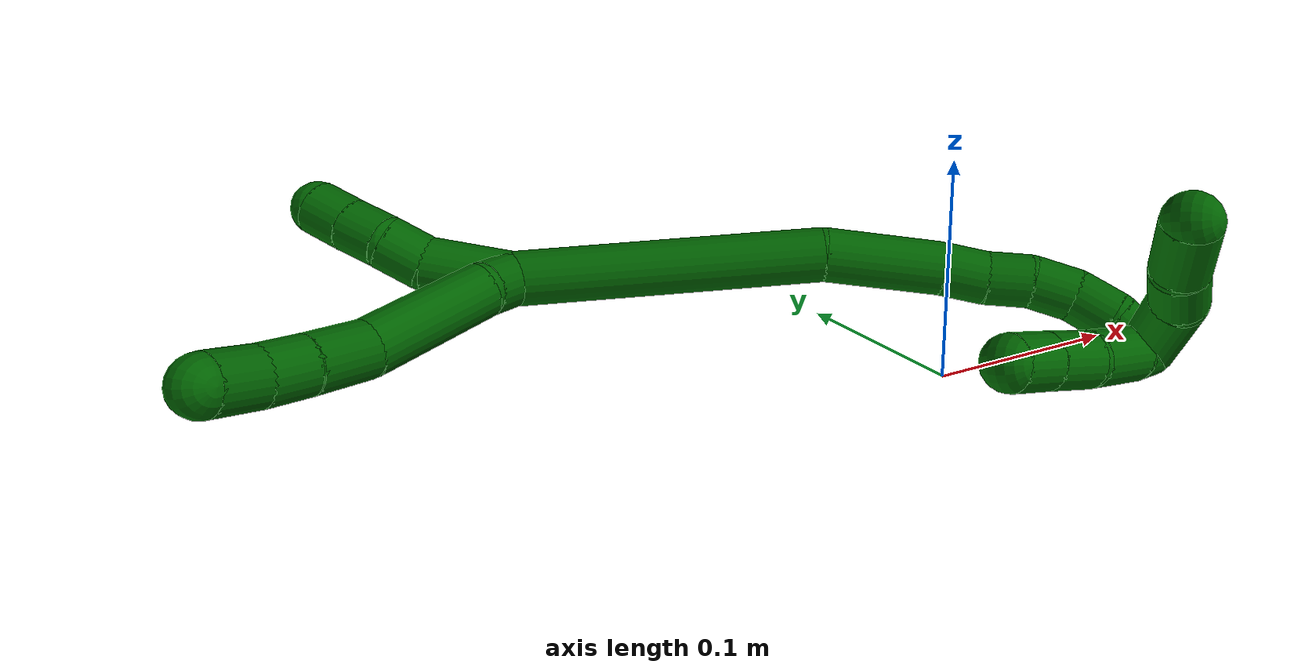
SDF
<sdf version="1.7">
 <world name="default">
  <model name="6">
   <static>0</static>
   <link name="6">
    <collision name="collision-cylinder-e_1_2_8">
     <pose>-0.009764 0.000993 0.001961 -0.468888 -1.34938 0.377549</pose>
     <geometry><cylinder><radius>0.0125</radius><length>0.020016</length></cylinder></geometry>
     <surface>
      <friction><ode><mu>1.16</mu><mu2>1.16</mu2><slip1>0</slip1><slip2>0</slip2></ode></friction>
      <contact><ode><kp>1e+06</kp><kd>1</kd><max_vel>0</max_vel><min_depth>0.001</min_depth></ode></contact>
     </surface>
    </collision>
    <visual name="visual-cylinder-e_1_2_8">
     <pose>-0.009764 0.000993 0.001961 -0.468888 -1.34938 0.377549</pose>
     <geometry><cylinder><radius>0.0125</radius><length>0.020016</length></cylinder></geometry>
     <material><ambient>0 0.392157 0.003922 1</ambient></material>
    </visual>
    <collision name="collision-cylinder-e_2_8_9">
     <pose>-0.049166 0.000321 0.00273 2.19174 -1.5018 -2.13447</pose>
     <geometry><cylinder><radius>0.0125</radius><length>0.059417</length></cylinder></geometry>
     <surface>
      <friction><ode><mu>1.16</mu><mu2>1.16</mu2><slip1>0</slip1><slip2>0</slip2></ode></friction>
      <contact><ode><kp>1e+06</kp><kd>1</kd><max_vel>0</max_vel><min_depth>0.001</min_depth></ode></contact>
     </surface>
    </collision>
    <visual name="visual-cylinder-e_2_8_9">
     <pose>-0.049166 0.000321 0.00273 2.19174 -1.5018 -2.13447</pose>
     <geometry><cylinder><radius>0.0125</radius><length>0.059417</length></cylinder></geometry>
     <material><ambient>0 0.392157 0.003922 1</ambient></material>
    </visual>
    <collision name="collision-cylinder-e_3_9_10">
     <pose>-0.092702 0.001089 0.003369 -0.926044 -1.35507 0.763883</pose>
     <geometry><cylinder><radius>0.0125</radius><length>0.028456</length></cylinder></geometry>
     <surface>
      <friction><ode><mu>1.16</mu><mu2>1.16</mu2><slip1>0</slip1><slip2>0</slip2></ode></friction>
      <contact><ode><kp>1e+06</kp><kd>1</kd><max_vel>0</max_vel><min_depth>0.001</min_depth></ode></contact>
     </surface>
    </collision>
    <visual name="visual-cylinder-e_3_9_10">
     <pose>-0.092702 0.001089 0.003369 -0.926044 -1.35507 0.763883</pose>
     <geometry><cylinder><radius>0.0125</radius><length>0.028456</length></cylinder></geometry>
     <material><ambient>0 0.392157 0.003922 1</ambient></material>
    </visual>
    <collision name="collision-cylinder-e_4_10_11">
     <pose>-0.116477 0.00543 0.005911 -1.21333 -1.36761 1.02944</pose>
     <geometry><cylinder><radius>0.0125</radius><length>0.02017</length></cylinder></geometry>
     <surface>
      <friction><ode><mu>1.16</mu><mu2>1.16</mu2><slip1>0</slip1><slip2>0</slip2></ode></friction>
      <contact><ode><kp>1e+06</kp><kd>1</kd><max_vel>0</max_vel><min_depth>0.001</min_depth></ode></contact>
     </surface>
    </collision>
    <visual name="visual-cylinder-e_4_10_11">
     <pose>-0.116477 0.00543 0.005911 -1.21333 -1.36761 1.02944</pose>
     <geometry><cylinder><radius>0.0125</radius><length>0.02017</length></cylinder></geometry>
     <material><ambient>0 0.392157 0.003922 1</ambient></material>
    </visual>
    <collision name="collision-cylinder-e_5_11_6">
     <pose>-0.136721 0.010292 0.008663 -0.966875 -1.23728 0.715293</pose>
     <geometry><cylinder><radius>0.0125</radius><length>0.02194</length></cylinder></geometry>
     <surface>
      <friction><ode><mu>1.16</mu><mu2>1.16</mu2><slip1>0</slip1><slip2>0</slip2></ode></friction>
      <contact><ode><kp>1e+06</kp><kd>1</kd><max_vel>0</max_vel><min_depth>0.001</min_depth></ode></contact>
     </surface>
    </collision>
    <visual name="visual-cylinder-e_5_11_6">
     <pose>-0.136721 0.010292 0.008663 -0.966875 -1.23728 0.715293</pose>
     <geometry><cylinder><radius>0.0125</radius><length>0.02194</length></cylinder></geometry>
     <material><ambient>0 0.392157 0.003922 1</ambient></material>
    </visual>
    <collision name="collision-cylinder-e_1_2_12">
     <pose>-0.010671 0.007731 -0.014763 -2.65916 -0.569548 1.74382</pose>
     <geometry><cylinder><radius>0.0125</radius><length>0.039577</length></cylinder></geometry>
     <surface>
      <friction><ode><mu>1.16</mu><mu2>1.16</mu2><slip1>0</slip1><slip2>0</slip2></ode></friction>
      <contact><ode><kp>1e+06</kp><kd>1</kd><max_vel>0</max_vel><min_depth>0.001</min_depth></ode></contact>
     </surface>
    </collision>
    <visual name="visual-cylinder-e_1_2_12">
     <pose>-0.010671 0.007731 -0.014763 -2.65916 -0.569548 1.74382</pose>
     <geometry><cylinder><radius>0.0125</radius><length>0.039577</length></cylinder></geometry>
     <material><ambient>0 0.392157 0.003922 1</ambient></material>
    </visual>
    <collision name="collision-cylinder-e_2_12_13">
     <pose>-0.025466 0.022182 -0.035975 -2.33571 -0.416904 0.921253</pose>
     <geometry><cylinder><radius>0.0125</radius><length>0.020372</length></cylinder></geometry>
     <surface>
      <friction><ode><mu>1.16</mu><mu2>1.16</mu2><slip1>0</slip1><slip2>0</slip2></ode></friction>
      <contact><ode><kp>1e+06</kp><kd>1</kd><max_vel>0</max_vel><min_depth>0.001</min_depth></ode></contact>
     </surface>
    </collision>
    <visual name="visual-cylinder-e_2_12_13">
     <pose>-0.025466 0.022182 -0.035975 -2.33571 -0.416904 0.921253</pose>
     <geometry><cylinder><radius>0.0125</radius><length>0.020372</length></cylinder></geometry>
     <material><ambient>0 0.392157 0.003922 1</ambient></material>
    </visual>
    <collision name="collision-cylinder-e_3_13_14">
     <pose>-0.031556 0.033935 -0.050866 -2.60384 -0.197312 0.68969</pose>
     <geometry><cylinder><radius>0.0125</radius><length>0.020047</length></cylinder></geometry>
     <surface>
      <friction><ode><mu>1.16</mu><mu2>1.16</mu2><slip1>0</slip1><slip2>0</slip2></ode></friction>
      <contact><ode><kp>1e+06</kp><kd>1</kd><max_vel>0</max_vel><min_depth>0.001</min_depth></ode></contact>
     </surface>
    </collision>
    <visual name="visual-cylinder-e_3_13_14">
     <pose>-0.031556 0.033935 -0.050866 -2.60384 -0.197312 0.68969</pose>
     <geometry><cylinder><radius>0.0125</radius><length>0.020047</length></cylinder></geometry>
     <material><ambient>0 0.392157 0.003922 1</ambient></material>
    </visual>
    <collision name="collision-cylinder-e_4_14_5">
     <pose>-0.035269 0.044191 -0.067658 -2.58281 -0.175706 0.59575</pose>
     <geometry><cylinder><radius>0.0125</radius><length>0.020005</length></cylinder></geometry>
     <surface>
      <friction><ode><mu>1.16</mu><mu2>1.16</mu2><slip1>0</slip1><slip2>0</slip2></ode></friction>
      <contact><ode><kp>1e+06</kp><kd>1</kd><max_vel>0</max_vel><min_depth>0.001</min_depth></ode></contact>
     </surface>
    </collision>
    <visual name="visual-cylinder-e_4_14_5">
     <pose>-0.035269 0.044191 -0.067658 -2.58281 -0.175706 0.59575</pose>
     <geometry><cylinder><radius>0.0125</radius><length>0.020005</length></cylinder></geometry>
     <material><ambient>0 0.392157 0.003922 1</ambient></material>
    </visual>
    <collision name="collision-cylinder-e_1_2_15">
     <pose>0.048103 -0.012289 0.050147 0.240321 0.750043 0.094989</pose>
     <geometry><cylinder><radius>0.0125</radius><length>0.141134</length></cylinder></geometry>
     <surface>
      <friction><ode><mu>1.16</mu><mu2>1.16</mu2><slip1>0</slip1><slip2>0</slip2></ode></friction>
      <contact><ode><kp>1e+06</kp><kd>1</kd><max_vel>0</max_vel><min_depth>0.001</min_depth></ode></contact>
     </surface>
    </collision>
    <visual name="visual-cylinder-e_1_2_15">
     <pose>0.048103 -0.012289 0.050147 0.240321 0.750043 0.094989</pose>
     <geometry><cylinder><radius>0.0125</radius><length>0.141134</length></cylinder></geometry>
     <material><ambient>0 0.392157 0.003922 1</ambient></material>
    </visual>
    <collision name="collision-cylinder-e_2_15_16">
     <pose>0.114197 -0.034766 0.11869 0.505764 0.707692 0.190336</pose>
     <geometry><cylinder><radius>0.0125</radius><length>0.055349</length></cylinder></geometry>
     <surface>
      <friction><ode><mu>1.16</mu><mu2>1.16</mu2><slip1>0</slip1><slip2>0</slip2></ode></friction>
      <contact><ode><kp>1e+06</kp><kd>1</kd><max_vel>0</max_vel><min_depth>0.001</min_depth></ode></contact>
     </surface>
    </collision>
    <visual name="visual-cylinder-e_2_15_16">
     <pose>0.114197 -0.034766 0.11869 0.505764 0.707692 0.190336</pose>
     <geometry><cylinder><radius>0.0125</radius><length>0.055349</length></cylinder></geometry>
     <material><ambient>0 0.392157 0.003922 1</ambient></material>
    </visual>
    <collision name="collision-cylinder-e_3_16_17">
     <pose>0.138165 -0.049579 0.144431 0.562067 0.603075 0.179087</pose>
     <geometry><cylinder><radius>0.0125</radius><length>0.021078</length></cylinder></geometry>
     <surface>
      <friction><ode><mu>1.16</mu><mu2>1.16</mu2><slip1>0</slip1><slip2>0</slip2></ode></friction>
      <contact><ode><kp>1e+06</kp><kd>1</kd><max_vel>0</max_vel><min_depth>0.001</min_depth></ode></contact>
     </surface>
    </collision>
    <visual name="visual-cylinder-e_3_16_17">
     <pose>0.138165 -0.049579 0.144431 0.562067 0.603075 0.179087</pose>
     <geometry><cylinder><radius>0.0125</radius><length>0.021078</length></cylinder></geometry>
     <material><ambient>0 0.392157 0.003922 1</ambient></material>
    </visual>
    <collision name="collision-cylinder-e_4_17_18">
     <pose>0.150055 -0.057335 0.159876 0.368678 0.59774 0.114767</pose>
     <geometry><cylinder><radius>0.0125</radius><length>0.021012</length></cylinder></geometry>
     <surface>
      <friction><ode><mu>1.16</mu><mu2>1.16</mu2><slip1>0</slip1><slip2>0</slip2></ode></friction>
      <contact><ode><kp>1e+06</kp><kd>1</kd><max_vel>0</max_vel><min_depth>0.001</min_depth></ode></contact>
     </surface>
    </collision>
    <visual name="visual-cylinder-e_4_17_18">
     <pose>0.150055 -0.057335 0.159876 0.368678 0.59774 0.114767</pose>
     <geometry><cylinder><radius>0.0125</radius><length>0.021012</length></cylinder></geometry>
     <material><ambient>0 0.392157 0.003922 1</ambient></material>
    </visual>
    <collision name="collision-cylinder-e_5_18_19">
     <pose>0.160841 -0.065756 0.17567 0.602511 0.481037 0.15212</pose>
     <geometry><cylinder><radius>0.0125</radius><length>0.021066</length></cylinder></geometry>
     <surface>
      <friction><ode><mu>1.16</mu><mu2>1.16</mu2><slip1>0</slip1><slip2>0</slip2></ode></friction>
      <contact><ode><kp>1e+06</kp><kd>1</kd><max_vel>0</max_vel><min_depth>0.001</min_depth></ode></contact>
     </surface>
    </collision>
    <visual name="visual-cylinder-e_5_18_19">
     <pose>0.160841 -0.065756 0.17567 0.602511 0.481037 0.15212</pose>
     <geometry><cylinder><radius>0.0125</radius><length>0.021066</length></cylinder></geometry>
     <material><ambient>0 0.392157 0.003922 1</ambient></material>
    </visual>
    <collision name="collision-cylinder-e_6_19_20">
     <pose>0.167157 -0.07721 0.191301 0.660137 0.142568 0.048917</pose>
     <geometry><cylinder><radius>0.0125</radius><length>0.020304</length></cylinder></geometry>
     <surface>
      <friction><ode><mu>1.16</mu><mu2>1.16</mu2><slip1>0</slip1><slip2>0</slip2></ode></friction>
      <contact><ode><kp>1e+06</kp><kd>1</kd><max_vel>0</max_vel><min_depth>0.001</min_depth></ode></contact>
     </surface>
    </collision>
    <visual name="visual-cylinder-e_6_19_20">
     <pose>0.167157 -0.07721 0.191301 0.660137 0.142568 0.048917</pose>
     <geometry><cylinder><radius>0.0125</radius><length>0.020304</length></cylinder></geometry>
     <material><ambient>0 0.392157 0.003922 1</ambient></material>
    </visual>
    <collision name="collision-cylinder-e_7_20_1">
     <pose>0.169994 -0.091291 0.205234 0.922771 0.139519 0.06945</pose>
     <geometry><cylinder><radius>0.0125</radius><length>0.020058</length></cylinder></geometry>
     <surface>
      <friction><ode><mu>1.16</mu><mu2>1.16</mu2><slip1>0</slip1><slip2>0</slip2></ode></friction>
      <contact><ode><kp>1e+06</kp><kd>1</kd><max_vel>0</max_vel><min_depth>0.001</min_depth></ode></contact>
     </surface>
    </collision>
    <visual name="visual-cylinder-e_7_20_1">
     <pose>0.169994 -0.091291 0.205234 0.922771 0.139519 0.06945</pose>
     <geometry><cylinder><radius>0.0125</radius><length>0.020058</length></cylinder></geometry>
     <material><ambient>0 0.392157 0.003922 1</ambient></material>
    </visual>
    <collision name="collision-cylinder-e_1_1_21">
     <pose>0.161338 -0.096343 0.211601 -1.44152 -1.29082 1.16874</pose>
     <geometry><cylinder><radius>0.0125</radius><length>0.020916</length></cylinder></geometry>
     <surface>
      <friction><ode><mu>1.16</mu><mu2>1.16</mu2><slip1>0</slip1><slip2>0</slip2></ode></friction>
      <contact><ode><kp>1e+06</kp><kd>1</kd><max_vel>0</max_vel><min_depth>0.001</min_depth></ode></contact>
     </surface>
    </collision>
    <visual name="visual-cylinder-e_1_1_21">
     <pose>0.161338 -0.096343 0.211601 -1.44152 -1.29082 1.16874</pose>
     <geometry><cylinder><radius>0.0125</radius><length>0.020916</length></cylinder></geometry>
     <material><ambient>0 0.392157 0.003922 1</ambient></material>
    </visual>
    <collision name="collision-cylinder-e_2_21_22">
     <pose>0.134545 -0.087848 0.210198 -1.87641 -1.23182 1.53563</pose>
     <geometry><cylinder><radius>0.0125</radius><length>0.035505</length></cylinder></geometry>
     <surface>
      <friction><ode><mu>1.16</mu><mu2>1.16</mu2><slip1>0</slip1><slip2>0</slip2></ode></friction>
      <contact><ode><kp>1e+06</kp><kd>1</kd><max_vel>0</max_vel><min_depth>0.001</min_depth></ode></contact>
     </surface>
    </collision>
    <visual name="visual-cylinder-e_2_21_22">
     <pose>0.134545 -0.087848 0.210198 -1.87641 -1.23182 1.53563</pose>
     <geometry><cylinder><radius>0.0125</radius><length>0.035505</length></cylinder></geometry>
     <material><ambient>0 0.392157 0.003922 1</ambient></material>
    </visual>
    <collision name="collision-cylinder-e_3_22_23">
     <pose>0.107478 -0.078358 0.20458 -2.35382 -1.08542 1.93486</pose>
     <geometry><cylinder><radius>0.0125</radius><length>0.023346</length></cylinder></geometry>
     <surface>
      <friction><ode><mu>1.16</mu><mu2>1.16</mu2><slip1>0</slip1><slip2>0</slip2></ode></friction>
      <contact><ode><kp>1e+06</kp><kd>1</kd><max_vel>0</max_vel><min_depth>0.001</min_depth></ode></contact>
     </surface>
    </collision>
    <visual name="visual-cylinder-e_3_22_23">
     <pose>0.107478 -0.078358 0.20458 -2.35382 -1.08542 1.93486</pose>
     <geometry><cylinder><radius>0.0125</radius><length>0.023346</length></cylinder></geometry>
     <material><ambient>0 0.392157 0.003922 1</ambient></material>
    </visual>
    <collision name="collision-cylinder-e_4_23_4">
     <pose>0.088063 -0.071229 0.197732 -2.31437 -1.1163 1.91613</pose>
     <geometry><cylinder><radius>0.0125</radius><length>0.020232</length></cylinder></geometry>
     <surface>
      <friction><ode><mu>1.16</mu><mu2>1.16</mu2><slip1>0</slip1><slip2>0</slip2></ode></friction>
      <contact><ode><kp>1e+06</kp><kd>1</kd><max_vel>0</max_vel><min_depth>0.001</min_depth></ode></contact>
     </surface>
    </collision>
    <visual name="visual-cylinder-e_4_23_4">
     <pose>0.088063 -0.071229 0.197732 -2.31437 -1.1163 1.91613</pose>
     <geometry><cylinder><radius>0.0125</radius><length>0.020232</length></cylinder></geometry>
     <material><ambient>0 0.392157 0.003922 1</ambient></material>
    </visual>
    <collision name="collision-cylinder-e_1_1_24">
     <pose>0.157945 -0.082556 0.225816 -0.851424 -0.545757 0.25245</pose>
     <geometry><cylinder><radius>0.0125</radius><length>0.051802</length></cylinder></geometry>
     <surface>
      <friction><ode><mu>1.16</mu><mu2>1.16</mu2><slip1>0</slip1><slip2>0</slip2></ode></friction>
      <contact><ode><kp>1e+06</kp><kd>1</kd><max_vel>0</max_vel><min_depth>0.001</min_depth></ode></contact>
     </surface>
    </collision>
    <visual name="visual-cylinder-e_1_1_24">
     <pose>0.157945 -0.082556 0.225816 -0.851424 -0.545757 0.25245</pose>
     <geometry><cylinder><radius>0.0125</radius><length>0.051802</length></cylinder></geometry>
     <material><ambient>0 0.392157 0.003922 1</ambient></material>
    </visual>
    <collision name="collision-cylinder-e_2_24_25">
     <pose>0.139007 -0.057456 0.24365 -1.2039 -0.545614 0.379791</pose>
     <geometry><cylinder><radius>0.0125</radius><length>0.021171</length></cylinder></geometry>
     <surface>
      <friction><ode><mu>1.16</mu><mu2>1.16</mu2><slip1>0</slip1><slip2>0</slip2></ode></friction>
      <contact><ode><kp>1e+06</kp><kd>1</kd><max_vel>0</max_vel><min_depth>0.001</min_depth></ode></contact>
     </surface>
    </collision>
    <visual name="visual-cylinder-e_2_24_25">
     <pose>0.139007 -0.057456 0.24365 -1.2039 -0.545614 0.379791</pose>
     <geometry><cylinder><radius>0.0125</radius><length>0.021171</length></cylinder></geometry>
     <material><ambient>0 0.392157 0.003922 1</ambient></material>
    </visual>
    <collision name="collision-cylinder-e_3_25_3">
     <pose>0.128976 -0.037624 0.252584 -1.10746 -0.34248 0.213023</pose>
     <geometry><cylinder><radius>0.0125</radius><length>0.027027</length></cylinder></geometry>
     <surface>
      <friction><ode><mu>1.16</mu><mu2>1.16</mu2><slip1>0</slip1><slip2>0</slip2></ode></friction>
      <contact><ode><kp>1e+06</kp><kd>1</kd><max_vel>0</max_vel><min_depth>0.001</min_depth></ode></contact>
     </surface>
    </collision>
    <visual name="visual-cylinder-e_3_25_3">
     <pose>0.128976 -0.037624 0.252584 -1.10746 -0.34248 0.213023</pose>
     <geometry><cylinder><radius>0.0125</radius><length>0.027027</length></cylinder></geometry>
     <material><ambient>0 0.392157 0.003922 1</ambient></material>
    </visual>
    <collision name="collision-sphere-3">
     <pose>0.124438 -0.026237 0.258273 0 -0 0</pose>
     <geometry><sphere><radius>0.0125</radius></sphere></geometry>
     <surface>
      <friction><ode><mu>1.16</mu><mu2>1.16</mu2><slip1>0</slip1><slip2>0</slip2></ode></friction>
      <contact><ode><kp>1e+06</kp><kd>1</kd><max_vel>0</max_vel><min_depth>0.001</min_depth></ode></contact>
     </surface>
    </collision>
    <visual name="visual-sphere-3">
     <pose>0.124438 -0.026237 0.258273 0 -0 0</pose>
     <geometry><sphere><radius>0.0125</radius></sphere></geometry>
     <material><ambient>0 0.392157 0.003922 1</ambient></material>
    </visual>
    <collision name="collision-sphere-25">
     <pose>0.133514 -0.04901 0.246896 0 -0 0</pose>
     <geometry><sphere><radius>0.0125</radius></sphere></geometry>
     <surface>
      <friction><ode><mu>1.16</mu><mu2>1.16</mu2><slip1>0</slip1><slip2>0</slip2></ode></friction>
      <contact><ode><kp>1e+06</kp><kd>1</kd><max_vel>0</max_vel><min_depth>0.001</min_depth></ode></contact>
     </surface>
    </collision>
    <visual name="visual-sphere-25">
     <pose>0.133514 -0.04901 0.246896 0 -0 0</pose>
     <geometry><sphere><radius>0.0125</radius></sphere></geometry>
     <material><ambient>0 0.392157 0.003922 1</ambient></material>
    </visual>
    <collision name="collision-sphere-24">
     <pose>0.1445 -0.065903 0.240404 0 -0 0</pose>
     <geometry><sphere><radius>0.0125</radius></sphere></geometry>
     <surface>
      <friction><ode><mu>1.16</mu><mu2>1.16</mu2><slip1>0</slip1><slip2>0</slip2></ode></friction>
      <contact><ode><kp>1e+06</kp><kd>1</kd><max_vel>0</max_vel><min_depth>0.001</min_depth></ode></contact>
     </surface>
    </collision>
    <visual name="visual-sphere-24">
     <pose>0.1445 -0.065903 0.240404 0 -0 0</pose>
     <geometry><sphere><radius>0.0125</radius></sphere></geometry>
     <material><ambient>0 0.392157 0.003922 1</ambient></material>
    </visual>
    <collision name="collision-sphere-4">
     <pose>0.078974 -0.067961 0.194726 0 -0 0</pose>
     <geometry><sphere><radius>0.0125</radius></sphere></geometry>
     <surface>
      <friction><ode><mu>1.16</mu><mu2>1.16</mu2><slip1>0</slip1><slip2>0</slip2></ode></friction>
      <contact><ode><kp>1e+06</kp><kd>1</kd><max_vel>0</max_vel><min_depth>0.001</min_depth></ode></contact>
     </surface>
    </collision>
    <visual name="visual-sphere-4">
     <pose>0.078974 -0.067961 0.194726 0 -0 0</pose>
     <geometry><sphere><radius>0.0125</radius></sphere></geometry>
     <material><ambient>0 0.392157 0.003922 1</ambient></material>
    </visual>
    <collision name="collision-sphere-23">
     <pose>0.097153 -0.074498 0.200738 0 -0 0</pose>
     <geometry><sphere><radius>0.0125</radius></sphere></geometry>
     <surface>
      <friction><ode><mu>1.16</mu><mu2>1.16</mu2><slip1>0</slip1><slip2>0</slip2></ode></friction>
      <contact><ode><kp>1e+06</kp><kd>1</kd><max_vel>0</max_vel><min_depth>0.001</min_depth></ode></contact>
     </surface>
    </collision>
    <visual name="visual-sphere-23">
     <pose>0.097153 -0.074498 0.200738 0 -0 0</pose>
     <geometry><sphere><radius>0.0125</radius></sphere></geometry>
     <material><ambient>0 0.392157 0.003922 1</ambient></material>
    </visual>
    <collision name="collision-sphere-22">
     <pose>0.117803 -0.082218 0.208422 0 -0 0</pose>
     <geometry><sphere><radius>0.0125</radius></sphere></geometry>
     <surface>
      <friction><ode><mu>1.16</mu><mu2>1.16</mu2><slip1>0</slip1><slip2>0</slip2></ode></friction>
      <contact><ode><kp>1e+06</kp><kd>1</kd><max_vel>0</max_vel><min_depth>0.001</min_depth></ode></contact>
     </surface>
    </collision>
    <visual name="visual-sphere-22">
     <pose>0.117803 -0.082218 0.208422 0 -0 0</pose>
     <geometry><sphere><radius>0.0125</radius></sphere></geometry>
     <material><ambient>0 0.392157 0.003922 1</ambient></material>
    </visual>
    <collision name="collision-sphere-21">
     <pose>0.151288 -0.093477 0.211974 0 -0 0</pose>
     <geometry><sphere><radius>0.0125</radius></sphere></geometry>
     <surface>
      <friction><ode><mu>1.16</mu><mu2>1.16</mu2><slip1>0</slip1><slip2>0</slip2></ode></friction>
      <contact><ode><kp>1e+06</kp><kd>1</kd><max_vel>0</max_vel><min_depth>0.001</min_depth></ode></contact>
     </surface>
    </collision>
    <visual name="visual-sphere-21">
     <pose>0.151288 -0.093477 0.211974 0 -0 0</pose>
     <geometry><sphere><radius>0.0125</radius></sphere></geometry>
     <material><ambient>0 0.392157 0.003922 1</ambient></material>
    </visual>
    <collision name="collision-sphere-1">
     <pose>0.171389 -0.099209 0.211229 0 -0 0</pose>
     <geometry><sphere><radius>0.0125</radius></sphere></geometry>
     <surface>
      <friction><ode><mu>1.16</mu><mu2>1.16</mu2><slip1>0</slip1><slip2>0</slip2></ode></friction>
      <contact><ode><kp>1e+06</kp><kd>1</kd><max_vel>0</max_vel><min_depth>0.001</min_depth></ode></contact>
     </surface>
    </collision>
    <visual name="visual-sphere-1">
     <pose>0.171389 -0.099209 0.211229 0 -0 0</pose>
     <geometry><sphere><radius>0.0125</radius></sphere></geometry>
     <material><ambient>0 0.392157 0.003922 1</ambient></material>
    </visual>
    <collision name="collision-sphere-6">
     <pose>-0.147087 0.013248 0.010702 0 -0 0</pose>
     <geometry><sphere><radius>0.0125</radius></sphere></geometry>
     <surface>
      <friction><ode><mu>1.16</mu><mu2>1.16</mu2><slip1>0</slip1><slip2>0</slip2></ode></friction>
      <contact><ode><kp>1e+06</kp><kd>1</kd><max_vel>0</max_vel><min_depth>0.001</min_depth></ode></contact>
     </surface>
    </collision>
    <visual name="visual-sphere-6">
     <pose>-0.147087 0.013248 0.010702 0 -0 0</pose>
     <geometry><sphere><radius>0.0125</radius></sphere></geometry>
     <material><ambient>0 0.392157 0.003922 1</ambient></material>
    </visual>
    <collision name="collision-sphere-11">
     <pose>-0.126355 0.007336 0.006623 0 -0 0</pose>
     <geometry><sphere><radius>0.0125</radius></sphere></geometry>
     <surface>
      <friction><ode><mu>1.16</mu><mu2>1.16</mu2><slip1>0</slip1><slip2>0</slip2></ode></friction>
      <contact><ode><kp>1e+06</kp><kd>1</kd><max_vel>0</max_vel><min_depth>0.001</min_depth></ode></contact>
     </surface>
    </collision>
    <visual name="visual-sphere-11">
     <pose>-0.126355 0.007336 0.006623 0 -0 0</pose>
     <geometry><sphere><radius>0.0125</radius></sphere></geometry>
     <material><ambient>0 0.392157 0.003922 1</ambient></material>
    </visual>
    <collision name="collision-sphere-10">
     <pose>-0.1066 0.003523 0.005199 0 -0 0</pose>
     <geometry><sphere><radius>0.0125</radius></sphere></geometry>
     <surface>
      <friction><ode><mu>1.16</mu><mu2>1.16</mu2><slip1>0</slip1><slip2>0</slip2></ode></friction>
      <contact><ode><kp>1e+06</kp><kd>1</kd><max_vel>0</max_vel><min_depth>0.001</min_depth></ode></contact>
     </surface>
    </collision>
    <visual name="visual-sphere-10">
     <pose>-0.1066 0.003523 0.005199 0 -0 0</pose>
     <geometry><sphere><radius>0.0125</radius></sphere></geometry>
     <material><ambient>0 0.392157 0.003922 1</ambient></material>
    </visual>
    <collision name="collision-sphere-9">
     <pose>-0.078804 -0.001345 0.001538 0 -0 0</pose>
     <geometry><sphere><radius>0.0125</radius></sphere></geometry>
     <surface>
      <friction><ode><mu>1.16</mu><mu2>1.16</mu2><slip1>0</slip1><slip2>0</slip2></ode></friction>
      <contact><ode><kp>1e+06</kp><kd>1</kd><max_vel>0</max_vel><min_depth>0.001</min_depth></ode></contact>
     </surface>
    </collision>
    <visual name="visual-sphere-9">
     <pose>-0.078804 -0.001345 0.001538 0 -0 0</pose>
     <geometry><sphere><radius>0.0125</radius></sphere></geometry>
     <material><ambient>0 0.392157 0.003922 1</ambient></material>
    </visual>
    <collision name="collision-sphere-2">
     <geometry><sphere><radius>0.0125</radius></sphere></geometry>
     <surface>
      <friction><ode><mu>1.16</mu><mu2>1.16</mu2><slip1>0</slip1><slip2>0</slip2></ode></friction>
      <contact><ode><kp>1e+06</kp><kd>1</kd><max_vel>0</max_vel><min_depth>0.001</min_depth></ode></contact>
     </surface>
    </collision>
    <visual name="visual-sphere-2">
     <geometry><sphere><radius>0.0125</radius></sphere></geometry>
     <material><ambient>0 0.392157 0.003922 1</ambient></material>
    </visual>
    <collision name="collision-sphere-19">
     <pose>0.165715 -0.071048 0.183363 0 -0 0</pose>
     <geometry><sphere><radius>0.0125</radius></sphere></geometry>
     <surface>
      <friction><ode><mu>1.16</mu><mu2>1.16</mu2><slip1>0</slip1><slip2>0</slip2></ode></friction>
      <contact><ode><kp>1e+06</kp><kd>1</kd><max_vel>0</max_vel><min_depth>0.001</min_depth></ode></contact>
     </surface>
    </collision>
    <visual name="visual-sphere-19">
     <pose>0.165715 -0.071048 0.183363 0 -0 0</pose>
     <geometry><sphere><radius>0.0125</radius></sphere></geometry>
     <material><ambient>0 0.392157 0.003922 1</ambient></material>
    </visual>
    <collision name="collision-sphere-8">
     <pose>-0.019528 0.001986 0.003921 0 -0 0</pose>
     <geometry><sphere><radius>0.0125</radius></sphere></geometry>
     <surface>
      <friction><ode><mu>1.16</mu><mu2>1.16</mu2><slip1>0</slip1><slip2>0</slip2></ode></friction>
      <contact><ode><kp>1e+06</kp><kd>1</kd><max_vel>0</max_vel><min_depth>0.001</min_depth></ode></contact>
     </surface>
    </collision>
    <visual name="visual-sphere-8">
     <pose>-0.019528 0.001986 0.003921 0 -0 0</pose>
     <geometry><sphere><radius>0.0125</radius></sphere></geometry>
     <material><ambient>0 0.392157 0.003922 1</ambient></material>
    </visual>
    <collision name="collision-sphere-12">
     <pose>-0.021342 0.015463 -0.029525 0 -0 0</pose>
     <geometry><sphere><radius>0.0125</radius></sphere></geometry>
     <surface>
      <friction><ode><mu>1.16</mu><mu2>1.16</mu2><slip1>0</slip1><slip2>0</slip2></ode></friction>
      <contact><ode><kp>1e+06</kp><kd>1</kd><max_vel>0</max_vel><min_depth>0.001</min_depth></ode></contact>
     </surface>
    </collision>
    <visual name="visual-sphere-12">
     <pose>-0.021342 0.015463 -0.029525 0 -0 0</pose>
     <geometry><sphere><radius>0.0125</radius></sphere></geometry>
     <material><ambient>0 0.392157 0.003922 1</ambient></material>
    </visual>
    <collision name="collision-sphere-13">
     <pose>-0.029591 0.028901 -0.042424 0 -0 0</pose>
     <geometry><sphere><radius>0.0125</radius></sphere></geometry>
     <surface>
      <friction><ode><mu>1.16</mu><mu2>1.16</mu2><slip1>0</slip1><slip2>0</slip2></ode></friction>
      <contact><ode><kp>1e+06</kp><kd>1</kd><max_vel>0</max_vel><min_depth>0.001</min_depth></ode></contact>
     </surface>
    </collision>
    <visual name="visual-sphere-13">
     <pose>-0.029591 0.028901 -0.042424 0 -0 0</pose>
     <geometry><sphere><radius>0.0125</radius></sphere></geometry>
     <material><ambient>0 0.392157 0.003922 1</ambient></material>
    </visual>
    <collision name="collision-sphere-14">
     <pose>-0.033521 0.03897 -0.059307 0 -0 0</pose>
     <geometry><sphere><radius>0.0125</radius></sphere></geometry>
     <surface>
      <friction><ode><mu>1.16</mu><mu2>1.16</mu2><slip1>0</slip1><slip2>0</slip2></ode></friction>
      <contact><ode><kp>1e+06</kp><kd>1</kd><max_vel>0</max_vel><min_depth>0.001</min_depth></ode></contact>
     </surface>
    </collision>
    <visual name="visual-sphere-14">
     <pose>-0.033521 0.03897 -0.059307 0 -0 0</pose>
     <geometry><sphere><radius>0.0125</radius></sphere></geometry>
     <material><ambient>0 0.392157 0.003922 1</ambient></material>
    </visual>
    <collision name="collision-sphere-5">
     <pose>-0.037018 0.049412 -0.076008 0 -0 0</pose>
     <geometry><sphere><radius>0.0125</radius></sphere></geometry>
     <surface>
      <friction><ode><mu>1.16</mu><mu2>1.16</mu2><slip1>0</slip1><slip2>0</slip2></ode></friction>
      <contact><ode><kp>1e+06</kp><kd>1</kd><max_vel>0</max_vel><min_depth>0.001</min_depth></ode></contact>
     </surface>
    </collision>
    <visual name="visual-sphere-5">
     <pose>-0.037018 0.049412 -0.076008 0 -0 0</pose>
     <geometry><sphere><radius>0.0125</radius></sphere></geometry>
     <material><ambient>0 0.392157 0.003922 1</ambient></material>
    </visual>
    <collision name="collision-sphere-15">
     <pose>0.096207 -0.024578 0.100294 0 -0 0</pose>
     <geometry><sphere><radius>0.0125</radius></sphere></geometry>
     <surface>
      <friction><ode><mu>1.16</mu><mu2>1.16</mu2><slip1>0</slip1><slip2>0</slip2></ode></friction>
      <contact><ode><kp>1e+06</kp><kd>1</kd><max_vel>0</max_vel><min_depth>0.001</min_depth></ode></contact>
     </surface>
    </collision>
    <visual name="visual-sphere-15">
     <pose>0.096207 -0.024578 0.100294 0 -0 0</pose>
     <geometry><sphere><radius>0.0125</radius></sphere></geometry>
     <material><ambient>0 0.392157 0.003922 1</ambient></material>
    </visual>
    <collision name="collision-sphere-16">
     <pose>0.132188 -0.044954 0.137086 0 -0 0</pose>
     <geometry><sphere><radius>0.0125</radius></sphere></geometry>
     <surface>
      <friction><ode><mu>1.16</mu><mu2>1.16</mu2><slip1>0</slip1><slip2>0</slip2></ode></friction>
      <contact><ode><kp>1e+06</kp><kd>1</kd><max_vel>0</max_vel><min_depth>0.001</min_depth></ode></contact>
     </surface>
    </collision>
    <visual name="visual-sphere-16">
     <pose>0.132188 -0.044954 0.137086 0 -0 0</pose>
     <geometry><sphere><radius>0.0125</radius></sphere></geometry>
     <material><ambient>0 0.392157 0.003922 1</ambient></material>
    </visual>
    <collision name="collision-sphere-17">
     <pose>0.144143 -0.054205 0.151775 0 -0 0</pose>
     <geometry><sphere><radius>0.0125</radius></sphere></geometry>
     <surface>
      <friction><ode><mu>1.16</mu><mu2>1.16</mu2><slip1>0</slip1><slip2>0</slip2></ode></friction>
      <contact><ode><kp>1e+06</kp><kd>1</kd><max_vel>0</max_vel><min_depth>0.001</min_depth></ode></contact>
     </surface>
    </collision>
    <visual name="visual-sphere-17">
     <pose>0.144143 -0.054205 0.151775 0 -0 0</pose>
     <geometry><sphere><radius>0.0125</radius></sphere></geometry>
     <material><ambient>0 0.392157 0.003922 1</ambient></material>
    </visual>
    <collision name="collision-sphere-18">
     <pose>0.155968 -0.060465 0.167977 0 -0 0</pose>
     <geometry><sphere><radius>0.0125</radius></sphere></geometry>
     <surface>
      <friction><ode><mu>1.16</mu><mu2>1.16</mu2><slip1>0</slip1><slip2>0</slip2></ode></friction>
      <contact><ode><kp>1e+06</kp><kd>1</kd><max_vel>0</max_vel><min_depth>0.001</min_depth></ode></contact>
     </surface>
    </collision>
    <visual name="visual-sphere-18">
     <pose>0.155968 -0.060465 0.167977 0 -0 0</pose>
     <geometry><sphere><radius>0.0125</radius></sphere></geometry>
     <material><ambient>0 0.392157 0.003922 1</ambient></material>
    </visual>
    <collision name="collision-sphere-20">
     <pose>0.1686 -0.083373 0.199239 0 -0 0</pose>
     <geometry><sphere><radius>0.0125</radius></sphere></geometry>
     <surface>
      <friction><ode><mu>1.16</mu><mu2>1.16</mu2><slip1>0</slip1><slip2>0</slip2></ode></friction>
      <contact><ode><kp>1e+06</kp><kd>1</kd><max_vel>0</max_vel><min_depth>0.001</min_depth></ode></contact>
     </surface>
    </collision>
    <visual name="visual-sphere-20">
     <pose>0.1686 -0.083373 0.199239 0 -0 0</pose>
     <geometry><sphere><radius>0.0125</radius></sphere></geometry>
     <material><ambient>0 0.392157 0.003922 1</ambient></material>
    </visual>
    <inertial>
     <pose>0.057383 -0.030506 0.097355 0 -0 0</pose>
     <mass>0.75</mass>
     <inertia>
      <ixx>0.000235</ixx>
      <ixy>0</ixy>
      <ixz>0</ixz>
      <iyy>0.000347</iyy>
      <iyz>0</iyz>
      <izz>-8.2e-05</izz>
     </inertia>
    </inertial>
   </link>
   <pose>-0.162528 0.107523 0.044447 1.3489 -0.104142 0.353672</pose>
  </model>
 </world>
</sdf>
